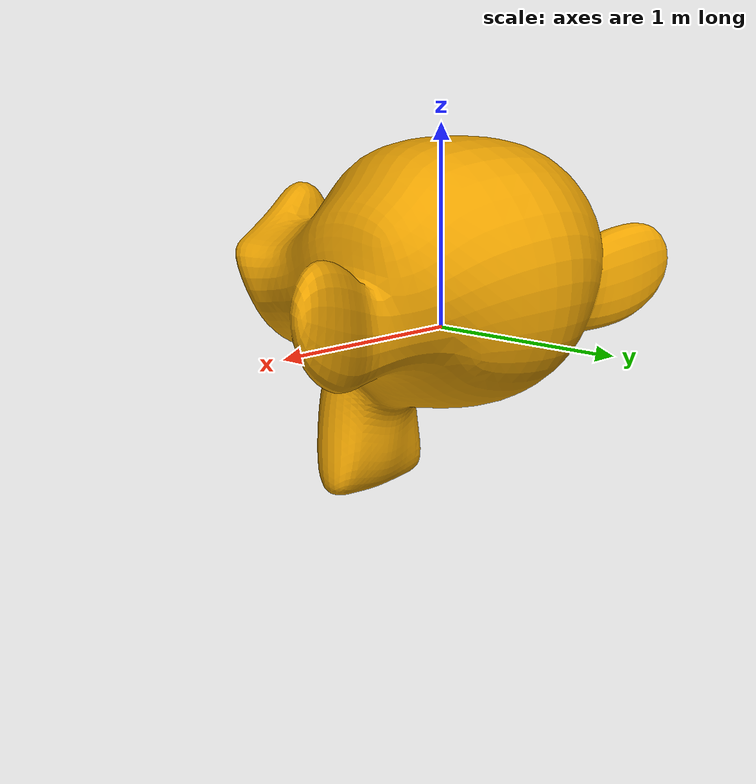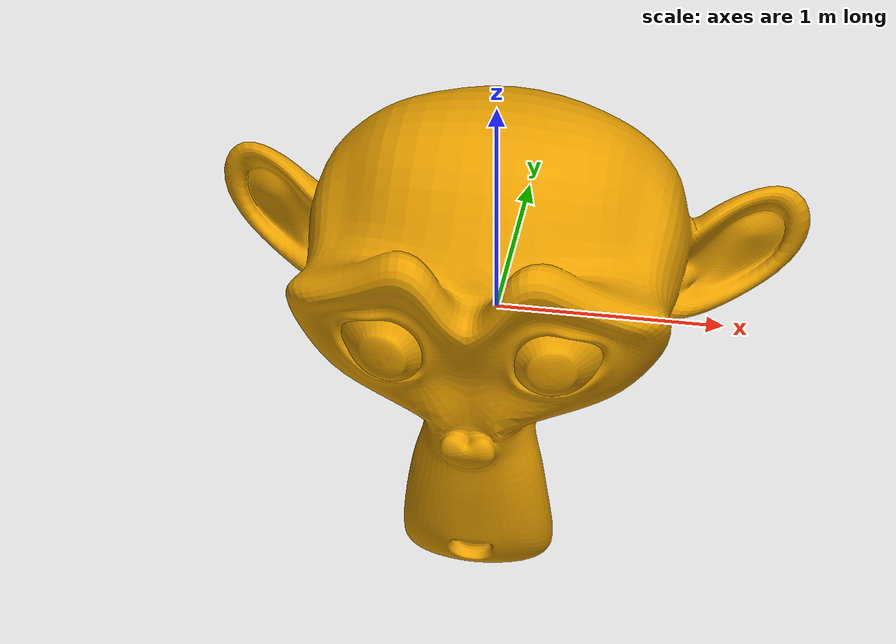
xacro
<robot name="robot">
  <link name="blender_monkey_Suzanne_link">
    <inertial>
      <origin rpy="0 0 0" xyz="0 0 0" />
      <mass value="1" />
      <inertia ixx="1" ixy="0" ixz="0" iyy="1" iyz="0" izz="1" />
    </inertial>
    <visual>
      <origin rpy="0 0 0" xyz="0 0 0" />
      <geometry>
        <mesh filename="package://exp1/meshes/blender_monkey_Suzanne.dae" />
      </geometry>
    </visual>
    <collision>
      <origin rpy="0 0 0" xyz="0 0 0" />
      <geometry>
        <mesh filename="package://exp1/meshes/blender_monkey_Suzanne.dae" />
      </geometry>
    </collision>
  </link>

  <gazebo> <static>true</static></gazebo>
</robot>
